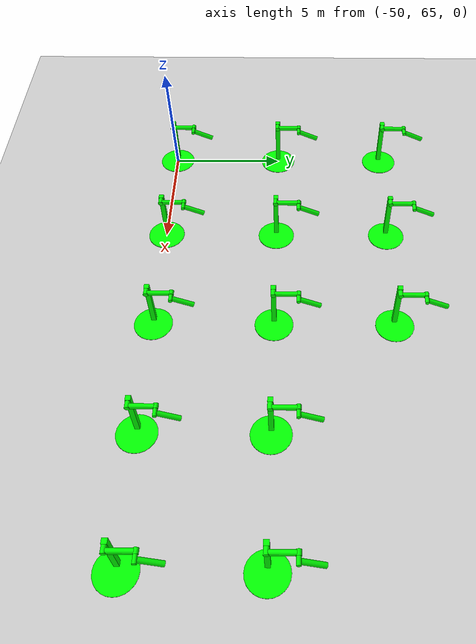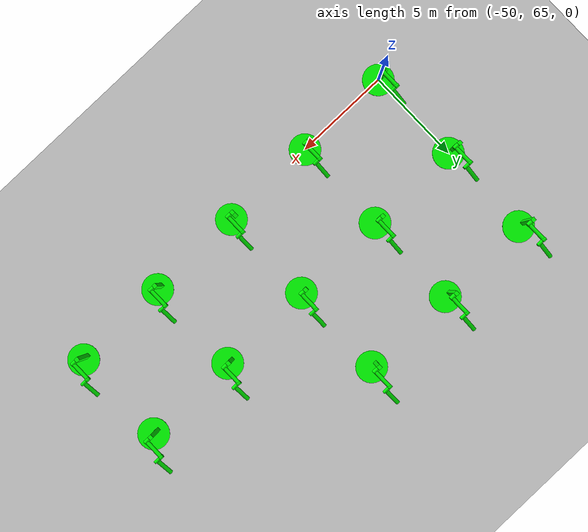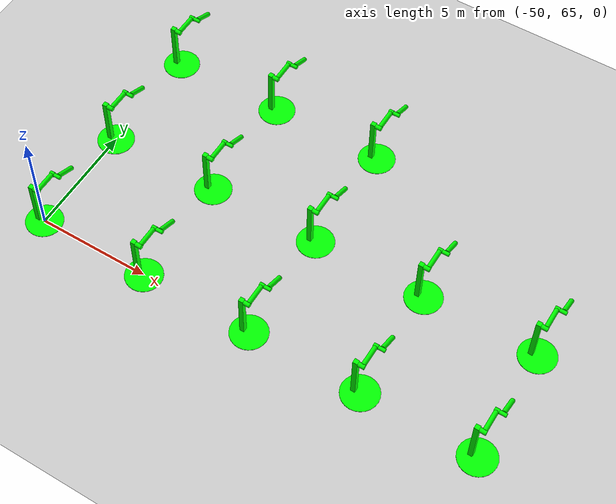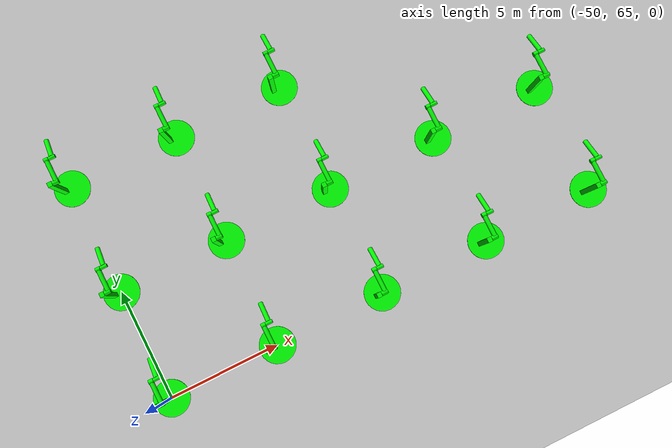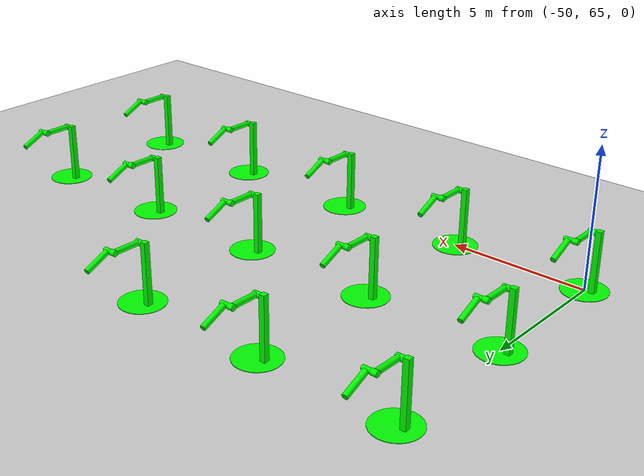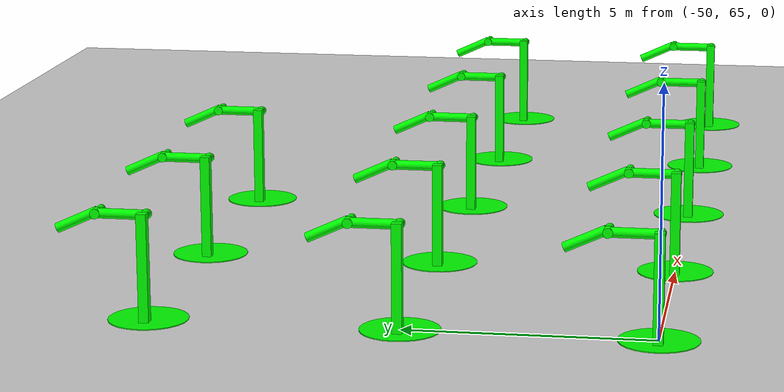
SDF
<sdf version="1.6">
 <world name="double_pendulums">
  <model name="ground_plane">
   <static>true</static>
   <link name="link">
    <collision name="collision">
     <geometry><plane><normal>0 0 1</normal><size>100 100</size></plane></geometry>
    </collision>
    <visual name="visual">
     <geometry><plane><normal>0 0 1</normal><size>100 100</size></plane></geometry>
     <material>
      <ambient>0.8 0.8 0.8 1</ambient>
      <diffuse>0.8 0.8 0.8 1</diffuse>
      <specular>0.8 0.8 0.8 1</specular>
     </material>
    </visual>
   </link>
  </model>
  <model name="dbl_pendulum_325">
   <pose>-50 65 0 0 0 0</pose>
   <link name="base">
    <inertial><mass>100</mass></inertial>
    <visual name="vis_plate_on_ground">
     <pose>0 0 0.01 0 0 0</pose>
     <geometry><cylinder><radius>0.8</radius><length>0.02</length></cylinder></geometry>
     <material><ambient>0 1 0 1</ambient><diffuse>0 1 0 1</diffuse><specular>0 1 0 1</specular></material>
    </visual>
    <visual name="vis_pole">
     <pose>-0.275 0 1.1 0 0 0</pose>
     <geometry><box><size>0.2 0.2 2.2</size></box></geometry>
     <material><ambient>0 1 0 1</ambient><diffuse>0 1 0 1</diffuse><specular>0 1 0 1</specular></material>
    </visual>
    <collision name="col_plate_on_ground">
     <pose>0 0 0.01 0 0 0</pose>
     <geometry><cylinder><radius>0.8</radius><length>0.02</length></cylinder></geometry>
    </collision>
    <collision name="col_pole">
     <pose>-0.275 0 1.1 0 0 0</pose>
     <geometry><box><size>0.2 0.2 2.2</size></box></geometry>
    </collision>
   </link>
   <link name="upper_link">
    <pose>0 0 2.1 -1.5708 0 0</pose>
    <inertial><pose>0 0 0.5 0 0 0</pose></inertial>
    <visual name="vis_upper_joint">
     <pose>-0.05 0 0 0 1.5708 0</pose>
     <geometry><cylinder><radius>0.1</radius><length>0.3</length></cylinder></geometry>
     <material><ambient>0 1 0 1</ambient><diffuse>0 1 0 1</diffuse><specular>0 1 0 1</specular></material>
    </visual>
    <visual name="vis_lower_joint">
     <pose>0 0 1.0 0 1.5708 0</pose>
     <geometry><cylinder><radius>0.1</radius><length>0.2</length></cylinder></geometry>
     <material><ambient>0 1 0 1</ambient><diffuse>0 1 0 1</diffuse><specular>0 1 0 1</specular></material>
    </visual>
    <visual name="vis_cylinder">
     <pose>0 0 0.5 0 0 0</pose>
     <geometry><cylinder><radius>0.1</radius><length>0.9</length></cylinder></geometry>
     <material><ambient>0 1 0 1</ambient><diffuse>0 1 0 1</diffuse><specular>0 1 0 1</specular></material>
    </visual>
    <collision name="col_upper_joint">
     <pose>-0.05 0 0 0 1.5708 0</pose>
     <geometry><cylinder><radius>0.1</radius><length>0.3</length></cylinder></geometry>
    </collision>
    <collision name="col_lower_joint">
     <pose>0 0 1.0 0 1.5708 0</pose>
     <geometry><cylinder><radius>0.1</radius><length>0.2</length></cylinder></geometry>
    </collision>
    <collision name="col_cylinder">
     <pose>0 0 0.5 0 0 0</pose>
     <geometry><cylinder><radius>0.1</radius><length>0.9</length></cylinder></geometry>
    </collision>
   </link>
   <link name="lower_link">
    <pose>0.25 1.0 2.1 -2 0 0</pose>
    <inertial><pose>0 0 0.5 0 0 0</pose></inertial>
    <visual name="vis_lower_joint">
     <pose>0 0 0 0 1.5708 0</pose>
     <geometry><cylinder><radius>0.08</radius><length>0.3</length></cylinder></geometry>
     <material><ambient>0 1 0 1</ambient><diffuse>0 1 0 1</diffuse><specular>0 1 0 1</specular></material>
    </visual>
    <visual name="vis_cylinder">
     <pose>0 0 0.5 0 0 0</pose>
     <geometry><cylinder><radius>0.1</radius><length>0.9</length></cylinder></geometry>
     <material><ambient>0 1 0 1</ambient><diffuse>0 1 0 1</diffuse><specular>0 1 0 1</specular></material>
    </visual>
    <collision name="col_lower_joint">
     <pose>0 0 0 0 1.5708 0</pose>
     <geometry><cylinder><radius>0.08</radius><length>0.3</length></cylinder></geometry>
    </collision>
    <collision name="col_cylinder">
     <pose>0 0 0.5 0 0 0</pose>
     <geometry><cylinder><radius>0.1</radius><length>0.9</length></cylinder></geometry>
    </collision>
   </link>
   <joint name="upper_joint" type="revolute">
    <parent>base</parent>
    <child>upper_link</child>
    <axis><xyz>1.0 0 0</xyz></axis>
   </joint>
   <joint name="lower_joint" type="revolute">
    <parent>upper_link</parent>
    <child>lower_link</child>
    <axis><xyz>1.0 0 0</xyz></axis>
   </joint>
  </model>
  <model name="dbl_pendulum_326">
   <pose>-45 65 0 0 0 0</pose>
   <link name="base">
    <inertial><mass>100</mass></inertial>
    <visual name="vis_plate_on_ground">
     <pose>0 0 0.01 0 0 0</pose>
     <geometry><cylinder><radius>0.8</radius><length>0.02</length></cylinder></geometry>
     <material><ambient>0 1 0 1</ambient><diffuse>0 1 0 1</diffuse><specular>0 1 0 1</specular></material>
    </visual>
    <visual name="vis_pole">
     <pose>-0.275 0 1.1 0 0 0</pose>
     <geometry><box><size>0.2 0.2 2.2</size></box></geometry>
     <material><ambient>0 1 0 1</ambient><diffuse>0 1 0 1</diffuse><specular>0 1 0 1</specular></material>
    </visual>
    <collision name="col_plate_on_ground">
     <pose>0 0 0.01 0 0 0</pose>
     <geometry><cylinder><radius>0.8</radius><length>0.02</length></cylinder></geometry>
    </collision>
    <collision name="col_pole">
     <pose>-0.275 0 1.1 0 0 0</pose>
     <geometry><box><size>0.2 0.2 2.2</size></box></geometry>
    </collision>
   </link>
   <link name="upper_link">
    <pose>0 0 2.1 -1.5708 0 0</pose>
    <inertial><pose>0 0 0.5 0 0 0</pose></inertial>
    <visual name="vis_upper_joint">
     <pose>-0.05 0 0 0 1.5708 0</pose>
     <geometry><cylinder><radius>0.1</radius><length>0.3</length></cylinder></geometry>
     <material><ambient>0 1 0 1</ambient><diffuse>0 1 0 1</diffuse><specular>0 1 0 1</specular></material>
    </visual>
    <visual name="vis_lower_joint">
     <pose>0 0 1.0 0 1.5708 0</pose>
     <geometry><cylinder><radius>0.1</radius><length>0.2</length></cylinder></geometry>
     <material><ambient>0 1 0 1</ambient><diffuse>0 1 0 1</diffuse><specular>0 1 0 1</specular></material>
    </visual>
    <visual name="vis_cylinder">
     <pose>0 0 0.5 0 0 0</pose>
     <geometry><cylinder><radius>0.1</radius><length>0.9</length></cylinder></geometry>
     <material><ambient>0 1 0 1</ambient><diffuse>0 1 0 1</diffuse><specular>0 1 0 1</specular></material>
    </visual>
    <collision name="col_upper_joint">
     <pose>-0.05 0 0 0 1.5708 0</pose>
     <geometry><cylinder><radius>0.1</radius><length>0.3</length></cylinder></geometry>
    </collision>
    <collision name="col_lower_joint">
     <pose>0 0 1.0 0 1.5708 0</pose>
     <geometry><cylinder><radius>0.1</radius><length>0.2</length></cylinder></geometry>
    </collision>
    <collision name="col_cylinder">
     <pose>0 0 0.5 0 0 0</pose>
     <geometry><cylinder><radius>0.1</radius><length>0.9</length></cylinder></geometry>
    </collision>
   </link>
   <link name="lower_link">
    <pose>0.25 1.0 2.1 -2 0 0</pose>
    <inertial><pose>0 0 0.5 0 0 0</pose></inertial>
    <visual name="vis_lower_joint">
     <pose>0 0 0 0 1.5708 0</pose>
     <geometry><cylinder><radius>0.08</radius><length>0.3</length></cylinder></geometry>
     <material><ambient>0 1 0 1</ambient><diffuse>0 1 0 1</diffuse><specular>0 1 0 1</specular></material>
    </visual>
    <visual name="vis_cylinder">
     <pose>0 0 0.5 0 0 0</pose>
     <geometry><cylinder><radius>0.1</radius><length>0.9</length></cylinder></geometry>
     <material><ambient>0 1 0 1</ambient><diffuse>0 1 0 1</diffuse><specular>0 1 0 1</specular></material>
    </visual>
    <collision name="col_lower_joint">
     <pose>0 0 0 0 1.5708 0</pose>
     <geometry><cylinder><radius>0.08</radius><length>0.3</length></cylinder></geometry>
    </collision>
    <collision name="col_cylinder">
     <pose>0 0 0.5 0 0 0</pose>
     <geometry><cylinder><radius>0.1</radius><length>0.9</length></cylinder></geometry>
    </collision>
   </link>
   <joint name="upper_joint" type="revolute">
    <parent>base</parent>
    <child>upper_link</child>
    <axis><xyz>1.0 0 0</xyz></axis>
   </joint>
   <joint name="lower_joint" type="revolute">
    <parent>upper_link</parent>
    <child>lower_link</child>
    <axis><xyz>1.0 0 0</xyz></axis>
   </joint>
  </model>
  <model name="dbl_pendulum_327">
   <pose>-40 65 0 0 0 0</pose>
   <link name="base">
    <inertial><mass>100</mass></inertial>
    <visual name="vis_plate_on_ground">
     <pose>0 0 0.01 0 0 0</pose>
     <geometry><cylinder><radius>0.8</radius><length>0.02</length></cylinder></geometry>
     <material><ambient>0 1 0 1</ambient><diffuse>0 1 0 1</diffuse><specular>0 1 0 1</specular></material>
    </visual>
    <visual name="vis_pole">
     <pose>-0.275 0 1.1 0 0 0</pose>
     <geometry><box><size>0.2 0.2 2.2</size></box></geometry>
     <material><ambient>0 1 0 1</ambient><diffuse>0 1 0 1</diffuse><specular>0 1 0 1</specular></material>
    </visual>
    <collision name="col_plate_on_ground">
     <pose>0 0 0.01 0 0 0</pose>
     <geometry><cylinder><radius>0.8</radius><length>0.02</length></cylinder></geometry>
    </collision>
    <collision name="col_pole">
     <pose>-0.275 0 1.1 0 0 0</pose>
     <geometry><box><size>0.2 0.2 2.2</size></box></geometry>
    </collision>
   </link>
   <link name="upper_link">
    <pose>0 0 2.1 -1.5708 0 0</pose>
    <inertial><pose>0 0 0.5 0 0 0</pose></inertial>
    <visual name="vis_upper_joint">
     <pose>-0.05 0 0 0 1.5708 0</pose>
     <geometry><cylinder><radius>0.1</radius><length>0.3</length></cylinder></geometry>
     <material><ambient>0 1 0 1</ambient><diffuse>0 1 0 1</diffuse><specular>0 1 0 1</specular></material>
    </visual>
    <visual name="vis_lower_joint">
     <pose>0 0 1.0 0 1.5708 0</pose>
     <geometry><cylinder><radius>0.1</radius><length>0.2</length></cylinder></geometry>
     <material><ambient>0 1 0 1</ambient><diffuse>0 1 0 1</diffuse><specular>0 1 0 1</specular></material>
    </visual>
    <visual name="vis_cylinder">
     <pose>0 0 0.5 0 0 0</pose>
     <geometry><cylinder><radius>0.1</radius><length>0.9</length></cylinder></geometry>
     <material><ambient>0 1 0 1</ambient><diffuse>0 1 0 1</diffuse><specular>0 1 0 1</specular></material>
    </visual>
    <collision name="col_upper_joint">
     <pose>-0.05 0 0 0 1.5708 0</pose>
     <geometry><cylinder><radius>0.1</radius><length>0.3</length></cylinder></geometry>
    </collision>
    <collision name="col_lower_joint">
     <pose>0 0 1.0 0 1.5708 0</pose>
     <geometry><cylinder><radius>0.1</radius><length>0.2</length></cylinder></geometry>
    </collision>
    <collision name="col_cylinder">
     <pose>0 0 0.5 0 0 0</pose>
     <geometry><cylinder><radius>0.1</radius><length>0.9</length></cylinder></geometry>
    </collision>
   </link>
   <link name="lower_link">
    <pose>0.25 1.0 2.1 -2 0 0</pose>
    <inertial><pose>0 0 0.5 0 0 0</pose></inertial>
    <visual name="vis_lower_joint">
     <pose>0 0 0 0 1.5708 0</pose>
     <geometry><cylinder><radius>0.08</radius><length>0.3</length></cylinder></geometry>
     <material><ambient>0 1 0 1</ambient><diffuse>0 1 0 1</diffuse><specular>0 1 0 1</specular></material>
    </visual>
    <visual name="vis_cylinder">
     <pose>0 0 0.5 0 0 0</pose>
     <geometry><cylinder><radius>0.1</radius><length>0.9</length></cylinder></geometry>
     <material><ambient>0 1 0 1</ambient><diffuse>0 1 0 1</diffuse><specular>0 1 0 1</specular></material>
    </visual>
    <collision name="col_lower_joint">
     <pose>0 0 0 0 1.5708 0</pose>
     <geometry><cylinder><radius>0.08</radius><length>0.3</length></cylinder></geometry>
    </collision>
    <collision name="col_cylinder">
     <pose>0 0 0.5 0 0 0</pose>
     <geometry><cylinder><radius>0.1</radius><length>0.9</length></cylinder></geometry>
    </collision>
   </link>
   <joint name="upper_joint" type="revolute">
    <parent>base</parent>
    <child>upper_link</child>
    <axis><xyz>1.0 0 0</xyz></axis>
   </joint>
   <joint name="lower_joint" type="revolute">
    <parent>upper_link</parent>
    <child>lower_link</child>
    <axis><xyz>1.0 0 0</xyz></axis>
   </joint>
  </model>
  <model name="dbl_pendulum_328">
   <pose>-35 65 0 0 0 0</pose>
   <link name="base">
    <inertial><mass>100</mass></inertial>
    <visual name="vis_plate_on_ground">
     <pose>0 0 0.01 0 0 0</pose>
     <geometry><cylinder><radius>0.8</radius><length>0.02</length></cylinder></geometry>
     <material><ambient>0 1 0 1</ambient><diffuse>0 1 0 1</diffuse><specular>0 1 0 1</specular></material>
    </visual>
    <visual name="vis_pole">
     <pose>-0.275 0 1.1 0 0 0</pose>
     <geometry><box><size>0.2 0.2 2.2</size></box></geometry>
     <material><ambient>0 1 0 1</ambient><diffuse>0 1 0 1</diffuse><specular>0 1 0 1</specular></material>
    </visual>
    <collision name="col_plate_on_ground">
     <pose>0 0 0.01 0 0 0</pose>
     <geometry><cylinder><radius>0.8</radius><length>0.02</length></cylinder></geometry>
    </collision>
    <collision name="col_pole">
     <pose>-0.275 0 1.1 0 0 0</pose>
     <geometry><box><size>0.2 0.2 2.2</size></box></geometry>
    </collision>
   </link>
   <link name="upper_link">
    <pose>0 0 2.1 -1.5708 0 0</pose>
    <inertial><pose>0 0 0.5 0 0 0</pose></inertial>
    <visual name="vis_upper_joint">
     <pose>-0.05 0 0 0 1.5708 0</pose>
     <geometry><cylinder><radius>0.1</radius><length>0.3</length></cylinder></geometry>
     <material><ambient>0 1 0 1</ambient><diffuse>0 1 0 1</diffuse><specular>0 1 0 1</specular></material>
    </visual>
    <visual name="vis_lower_joint">
     <pose>0 0 1.0 0 1.5708 0</pose>
     <geometry><cylinder><radius>0.1</radius><length>0.2</length></cylinder></geometry>
     <material><ambient>0 1 0 1</ambient><diffuse>0 1 0 1</diffuse><specular>0 1 0 1</specular></material>
    </visual>
    <visual name="vis_cylinder">
     <pose>0 0 0.5 0 0 0</pose>
     <geometry><cylinder><radius>0.1</radius><length>0.9</length></cylinder></geometry>
     <material><ambient>0 1 0 1</ambient><diffuse>0 1 0 1</diffuse><specular>0 1 0 1</specular></material>
    </visual>
    <collision name="col_upper_joint">
     <pose>-0.05 0 0 0 1.5708 0</pose>
     <geometry><cylinder><radius>0.1</radius><length>0.3</length></cylinder></geometry>
    </collision>
    <collision name="col_lower_joint">
     <pose>0 0 1.0 0 1.5708 0</pose>
     <geometry><cylinder><radius>0.1</radius><length>0.2</length></cylinder></geometry>
    </collision>
    <collision name="col_cylinder">
     <pose>0 0 0.5 0 0 0</pose>
     <geometry><cylinder><radius>0.1</radius><length>0.9</length></cylinder></geometry>
    </collision>
   </link>
   <link name="lower_link">
    <pose>0.25 1.0 2.1 -2 0 0</pose>
    <inertial><pose>0 0 0.5 0 0 0</pose></inertial>
    <visual name="vis_lower_joint">
     <pose>0 0 0 0 1.5708 0</pose>
     <geometry><cylinder><radius>0.08</radius><length>0.3</length></cylinder></geometry>
     <material><ambient>0 1 0 1</ambient><diffuse>0 1 0 1</diffuse><specular>0 1 0 1</specular></material>
    </visual>
    <visual name="vis_cylinder">
     <pose>0 0 0.5 0 0 0</pose>
     <geometry><cylinder><radius>0.1</radius><length>0.9</length></cylinder></geometry>
     <material><ambient>0 1 0 1</ambient><diffuse>0 1 0 1</diffuse><specular>0 1 0 1</specular></material>
    </visual>
    <collision name="col_lower_joint">
     <pose>0 0 0 0 1.5708 0</pose>
     <geometry><cylinder><radius>0.08</radius><length>0.3</length></cylinder></geometry>
    </collision>
    <collision name="col_cylinder">
     <pose>0 0 0.5 0 0 0</pose>
     <geometry><cylinder><radius>0.1</radius><length>0.9</length></cylinder></geometry>
    </collision>
   </link>
   <joint name="upper_joint" type="revolute">
    <parent>base</parent>
    <child>upper_link</child>
    <axis><xyz>1.0 0 0</xyz></axis>
   </joint>
   <joint name="lower_joint" type="revolute">
    <parent>upper_link</parent>
    <child>lower_link</child>
    <axis><xyz>1.0 0 0</xyz></axis>
   </joint>
  </model>
  <model name="dbl_pendulum_329">
   <pose>-30 65 0 0 0 0</pose>
   <link name="base">
    <inertial><mass>100</mass></inertial>
    <visual name="vis_plate_on_ground">
     <pose>0 0 0.01 0 0 0</pose>
     <geometry><cylinder><radius>0.8</radius><length>0.02</length></cylinder></geometry>
     <material><ambient>0 1 0 1</ambient><diffuse>0 1 0 1</diffuse><specular>0 1 0 1</specular></material>
    </visual>
    <visual name="vis_pole">
     <pose>-0.275 0 1.1 0 0 0</pose>
     <geometry><box><size>0.2 0.2 2.2</size></box></geometry>
     <material><ambient>0 1 0 1</ambient><diffuse>0 1 0 1</diffuse><specular>0 1 0 1</specular></material>
    </visual>
    <collision name="col_plate_on_ground">
     <pose>0 0 0.01 0 0 0</pose>
     <geometry><cylinder><radius>0.8</radius><length>0.02</length></cylinder></geometry>
    </collision>
    <collision name="col_pole">
     <pose>-0.275 0 1.1 0 0 0</pose>
     <geometry><box><size>0.2 0.2 2.2</size></box></geometry>
    </collision>
   </link>
   <link name="upper_link">
    <pose>0 0 2.1 -1.5708 0 0</pose>
    <inertial><pose>0 0 0.5 0 0 0</pose></inertial>
    <visual name="vis_upper_joint">
     <pose>-0.05 0 0 0 1.5708 0</pose>
     <geometry><cylinder><radius>0.1</radius><length>0.3</length></cylinder></geometry>
     <material><ambient>0 1 0 1</ambient><diffuse>0 1 0 1</diffuse><specular>0 1 0 1</specular></material>
    </visual>
    <visual name="vis_lower_joint">
     <pose>0 0 1.0 0 1.5708 0</pose>
     <geometry><cylinder><radius>0.1</radius><length>0.2</length></cylinder></geometry>
     <material><ambient>0 1 0 1</ambient><diffuse>0 1 0 1</diffuse><specular>0 1 0 1</specular></material>
    </visual>
    <visual name="vis_cylinder">
     <pose>0 0 0.5 0 0 0</pose>
     <geometry><cylinder><radius>0.1</radius><length>0.9</length></cylinder></geometry>
     <material><ambient>0 1 0 1</ambient><diffuse>0 1 0 1</diffuse><specular>0 1 0 1</specular></material>
    </visual>
    <collision name="col_upper_joint">
     <pose>-0.05 0 0 0 1.5708 0</pose>
     <geometry><cylinder><radius>0.1</radius><length>0.3</length></cylinder></geometry>
    </collision>
    <collision name="col_lower_joint">
     <pose>0 0 1.0 0 1.5708 0</pose>
     <geometry><cylinder><radius>0.1</radius><length>0.2</length></cylinder></geometry>
    </collision>
    <collision name="col_cylinder">
     <pose>0 0 0.5 0 0 0</pose>
     <geometry><cylinder><radius>0.1</radius><length>0.9</length></cylinder></geometry>
    </collision>
   </link>
   <link name="lower_link">
    <pose>0.25 1.0 2.1 -2 0 0</pose>
    <inertial><pose>0 0 0.5 0 0 0</pose></inertial>
    <visual name="vis_lower_joint">
     <pose>0 0 0 0 1.5708 0</pose>
     <geometry><cylinder><radius>0.08</radius><length>0.3</length></cylinder></geometry>
     <material><ambient>0 1 0 1</ambient><diffuse>0 1 0 1</diffuse><specular>0 1 0 1</specular></material>
    </visual>
    <visual name="vis_cylinder">
     <pose>0 0 0.5 0 0 0</pose>
     <geometry><cylinder><radius>0.1</radius><length>0.9</length></cylinder></geometry>
     <material><ambient>0 1 0 1</ambient><diffuse>0 1 0 1</diffuse><specular>0 1 0 1</specular></material>
    </visual>
    <collision name="col_lower_joint">
     <pose>0 0 0 0 1.5708 0</pose>
     <geometry><cylinder><radius>0.08</radius><length>0.3</length></cylinder></geometry>
    </collision>
    <collision name="col_cylinder">
     <pose>0 0 0.5 0 0 0</pose>
     <geometry><cylinder><radius>0.1</radius><length>0.9</length></cylinder></geometry>
    </collision>
   </link>
   <joint name="upper_joint" type="revolute">
    <parent>base</parent>
    <child>upper_link</child>
    <axis><xyz>1.0 0 0</xyz></axis>
   </joint>
   <joint name="lower_joint" type="revolute">
    <parent>upper_link</parent>
    <child>lower_link</child>
    <axis><xyz>1.0 0 0</xyz></axis>
   </joint>
  </model>
  <model name="dbl_pendulum_350">
   <pose>-50 70 0 0 0 0</pose>
   <link name="base">
    <inertial><mass>100</mass></inertial>
    <visual name="vis_plate_on_ground">
     <pose>0 0 0.01 0 0 0</pose>
     <geometry><cylinder><radius>0.8</radius><length>0.02</length></cylinder></geometry>
     <material><ambient>0 1 0 1</ambient><diffuse>0 1 0 1</diffuse><specular>0 1 0 1</specular></material>
    </visual>
    <visual name="vis_pole">
     <pose>-0.275 0 1.1 0 0 0</pose>
     <geometry><box><size>0.2 0.2 2.2</size></box></geometry>
     <material><ambient>0 1 0 1</ambient><diffuse>0 1 0 1</diffuse><specular>0 1 0 1</specular></material>
    </visual>
    <collision name="col_plate_on_ground">
     <pose>0 0 0.01 0 0 0</pose>
     <geometry><cylinder><radius>0.8</radius><length>0.02</length></cylinder></geometry>
    </collision>
    <collision name="col_pole">
     <pose>-0.275 0 1.1 0 0 0</pose>
     <geometry><box><size>0.2 0.2 2.2</size></box></geometry>
    </collision>
   </link>
   <link name="upper_link">
    <pose>0 0 2.1 -1.5708 0 0</pose>
    <inertial><pose>0 0 0.5 0 0 0</pose></inertial>
    <visual name="vis_upper_joint">
     <pose>-0.05 0 0 0 1.5708 0</pose>
     <geometry><cylinder><radius>0.1</radius><length>0.3</length></cylinder></geometry>
     <material><ambient>0 1 0 1</ambient><diffuse>0 1 0 1</diffuse><specular>0 1 0 1</specular></material>
    </visual>
    <visual name="vis_lower_joint">
     <pose>0 0 1.0 0 1.5708 0</pose>
     <geometry><cylinder><radius>0.1</radius><length>0.2</length></cylinder></geometry>
     <material><ambient>0 1 0 1</ambient><diffuse>0 1 0 1</diffuse><specular>0 1 0 1</specular></material>
    </visual>
    <visual name="vis_cylinder">
     <pose>0 0 0.5 0 0 0</pose>
     <geometry><cylinder><radius>0.1</radius><length>0.9</length></cylinder></geometry>
     <material><ambient>0 1 0 1</ambient><diffuse>0 1 0 1</diffuse><specular>0 1 0 1</specular></material>
    </visual>
    <collision name="col_upper_joint">
     <pose>-0.05 0 0 0 1.5708 0</pose>
     <geometry><cylinder><radius>0.1</radius><length>0.3</length></cylinder></geometry>
    </collision>
    <collision name="col_lower_joint">
     <pose>0 0 1.0 0 1.5708 0</pose>
     <geometry><cylinder><radius>0.1</radius><length>0.2</length></cylinder></geometry>
    </collision>
    <collision name="col_cylinder">
     <pose>0 0 0.5 0 0 0</pose>
     <geometry><cylinder><radius>0.1</radius><length>0.9</length></cylinder></geometry>
    </collision>
   </link>
   <link name="lower_link">
    <pose>0.25 1.0 2.1 -2 0 0</pose>
    <inertial><pose>0 0 0.5 0 0 0</pose></inertial>
    <visual name="vis_lower_joint">
     <pose>0 0 0 0 1.5708 0</pose>
     <geometry><cylinder><radius>0.08</radius><length>0.3</length></cylinder></geometry>
     <material><ambient>0 1 0 1</ambient><diffuse>0 1 0 1</diffuse><specular>0 1 0 1</specular></material>
    </visual>
    <visual name="vis_cylinder">
     <pose>0 0 0.5 0 0 0</pose>
     <geometry><cylinder><radius>0.1</radius><length>0.9</length></cylinder></geometry>
     <material><ambient>0 1 0 1</ambient><diffuse>0 1 0 1</diffuse><specular>0 1 0 1</specular></material>
    </visual>
    <collision name="col_lower_joint">
     <pose>0 0 0 0 1.5708 0</pose>
     <geometry><cylinder><radius>0.08</radius><length>0.3</length></cylinder></geometry>
    </collision>
    <collision name="col_cylinder">
     <pose>0 0 0.5 0 0 0</pose>
     <geometry><cylinder><radius>0.1</radius><length>0.9</length></cylinder></geometry>
    </collision>
   </link>
   <joint name="upper_joint" type="revolute">
    <parent>base</parent>
    <child>upper_link</child>
    <axis><xyz>1.0 0 0</xyz></axis>
   </joint>
   <joint name="lower_joint" type="revolute">
    <parent>upper_link</parent>
    <child>lower_link</child>
    <axis><xyz>1.0 0 0</xyz></axis>
   </joint>
  </model>
  <model name="dbl_pendulum_351">
   <pose>-45 70 0 0 0 0</pose>
   <link name="base">
    <inertial><mass>100</mass></inertial>
    <visual name="vis_plate_on_ground">
     <pose>0 0 0.01 0 0 0</pose>
     <geometry><cylinder><radius>0.8</radius><length>0.02</length></cylinder></geometry>
     <material><ambient>0 1 0 1</ambient><diffuse>0 1 0 1</diffuse><specular>0 1 0 1</specular></material>
    </visual>
    <visual name="vis_pole">
     <pose>-0.275 0 1.1 0 0 0</pose>
     <geometry><box><size>0.2 0.2 2.2</size></box></geometry>
     <material><ambient>0 1 0 1</ambient><diffuse>0 1 0 1</diffuse><specular>0 1 0 1</specular></material>
    </visual>
    <collision name="col_plate_on_ground">
     <pose>0 0 0.01 0 0 0</pose>
     <geometry><cylinder><radius>0.8</radius><length>0.02</length></cylinder></geometry>
    </collision>
    <collision name="col_pole">
     <pose>-0.275 0 1.1 0 0 0</pose>
     <geometry><box><size>0.2 0.2 2.2</size></box></geometry>
    </collision>
   </link>
   <link name="upper_link">
    <pose>0 0 2.1 -1.5708 0 0</pose>
    <inertial><pose>0 0 0.5 0 0 0</pose></inertial>
    <visual name="vis_upper_joint">
     <pose>-0.05 0 0 0 1.5708 0</pose>
     <geometry><cylinder><radius>0.1</radius><length>0.3</length></cylinder></geometry>
     <material><ambient>0 1 0 1</ambient><diffuse>0 1 0 1</diffuse><specular>0 1 0 1</specular></material>
    </visual>
    <visual name="vis_lower_joint">
     <pose>0 0 1.0 0 1.5708 0</pose>
     <geometry><cylinder><radius>0.1</radius><length>0.2</length></cylinder></geometry>
     <material><ambient>0 1 0 1</ambient><diffuse>0 1 0 1</diffuse><specular>0 1 0 1</specular></material>
    </visual>
    <visual name="vis_cylinder">
     <pose>0 0 0.5 0 0 0</pose>
     <geometry><cylinder><radius>0.1</radius><length>0.9</length></cylinder></geometry>
     <material><ambient>0 1 0 1</ambient><diffuse>0 1 0 1</diffuse><specular>0 1 0 1</specular></material>
    </visual>
    <collision name="col_upper_joint">
     <pose>-0.05 0 0 0 1.5708 0</pose>
     <geometry><cylinder><radius>0.1</radius><length>0.3</length></cylinder></geometry>
    </collision>
    <collision name="col_lower_joint">
     <pose>0 0 1.0 0 1.5708 0</pose>
     <geometry><cylinder><radius>0.1</radius><length>0.2</length></cylinder></geometry>
    </collision>
    <collision name="col_cylinder">
     <pose>0 0 0.5 0 0 0</pose>
     <geometry><cylinder><radius>0.1</radius><length>0.9</length></cylinder></geometry>
    </collision>
   </link>
   <link name="lower_link">
    <pose>0.25 1.0 2.1 -2 0 0</pose>
    <inertial><pose>0 0 0.5 0 0 0</pose></inertial>
    <visual name="vis_lower_joint">
     <pose>0 0 0 0 1.5708 0</pose>
     <geometry><cylinder><radius>0.08</radius><length>0.3</length></cylinder></geometry>
     <material><ambient>0 1 0 1</ambient><diffuse>0 1 0 1</diffuse><specular>0 1 0 1</specular></material>
    </visual>
    <visual name="vis_cylinder">
     <pose>0 0 0.5 0 0 0</pose>
     <geometry><cylinder><radius>0.1</radius><length>0.9</length></cylinder></geometry>
     <material><ambient>0 1 0 1</ambient><diffuse>0 1 0 1</diffuse><specular>0 1 0 1</specular></material>
    </visual>
    <collision name="col_lower_joint">
     <pose>0 0 0 0 1.5708 0</pose>
     <geometry><cylinder><radius>0.08</radius><length>0.3</length></cylinder></geometry>
    </collision>
    <collision name="col_cylinder">
     <pose>0 0 0.5 0 0 0</pose>
     <geometry><cylinder><radius>0.1</radius><length>0.9</length></cylinder></geometry>
    </collision>
   </link>
   <joint name="upper_joint" type="revolute">
    <parent>base</parent>
    <child>upper_link</child>
    <axis><xyz>1.0 0 0</xyz></axis>
   </joint>
   <joint name="lower_joint" type="revolute">
    <parent>upper_link</parent>
    <child>lower_link</child>
    <axis><xyz>1.0 0 0</xyz></axis>
   </joint>
  </model>
  <model name="dbl_pendulum_352">
   <pose>-40 70 0 0 0 0</pose>
   <link name="base">
    <inertial><mass>100</mass></inertial>
    <visual name="vis_plate_on_ground">
     <pose>0 0 0.01 0 0 0</pose>
     <geometry><cylinder><radius>0.8</radius><length>0.02</length></cylinder></geometry>
     <material><ambient>0 1 0 1</ambient><diffuse>0 1 0 1</diffuse><specular>0 1 0 1</specular></material>
    </visual>
    <visual name="vis_pole">
     <pose>-0.275 0 1.1 0 0 0</pose>
     <geometry><box><size>0.2 0.2 2.2</size></box></geometry>
     <material><ambient>0 1 0 1</ambient><diffuse>0 1 0 1</diffuse><specular>0 1 0 1</specular></material>
    </visual>
    <collision name="col_plate_on_ground">
     <pose>0 0 0.01 0 0 0</pose>
     <geometry><cylinder><radius>0.8</radius><length>0.02</length></cylinder></geometry>
    </collision>
    <collision name="col_pole">
     <pose>-0.275 0 1.1 0 0 0</pose>
     <geometry><box><size>0.2 0.2 2.2</size></box></geometry>
    </collision>
   </link>
   <link name="upper_link">
    <pose>0 0 2.1 -1.5708 0 0</pose>
    <inertial><pose>0 0 0.5 0 0 0</pose></inertial>
    <visual name="vis_upper_joint">
     <pose>-0.05 0 0 0 1.5708 0</pose>
     <geometry><cylinder><radius>0.1</radius><length>0.3</length></cylinder></geometry>
     <material><ambient>0 1 0 1</ambient><diffuse>0 1 0 1</diffuse><specular>0 1 0 1</specular></material>
    </visual>
    <visual name="vis_lower_joint">
     <pose>0 0 1.0 0 1.5708 0</pose>
     <geometry><cylinder><radius>0.1</radius><length>0.2</length></cylinder></geometry>
     <material><ambient>0 1 0 1</ambient><diffuse>0 1 0 1</diffuse><specular>0 1 0 1</specular></material>
    </visual>
    <visual name="vis_cylinder">
     <pose>0 0 0.5 0 0 0</pose>
     <geometry><cylinder><radius>0.1</radius><length>0.9</length></cylinder></geometry>
     <material><ambient>0 1 0 1</ambient><diffuse>0 1 0 1</diffuse><specular>0 1 0 1</specular></material>
    </visual>
    <collision name="col_upper_joint">
     <pose>-0.05 0 0 0 1.5708 0</pose>
     <geometry><cylinder><radius>0.1</radius><length>0.3</length></cylinder></geometry>
    </collision>
    <collision name="col_lower_joint">
     <pose>0 0 1.0 0 1.5708 0</pose>
     <geometry><cylinder><radius>0.1</radius><length>0.2</length></cylinder></geometry>
    </collision>
    <collision name="col_cylinder">
     <pose>0 0 0.5 0 0 0</pose>
     <geometry><cylinder><radius>0.1</radius><length>0.9</length></cylinder></geometry>
    </collision>
   </link>
   <link name="lower_link">
    <pose>0.25 1.0 2.1 -2 0 0</pose>
    <inertial><pose>0 0 0.5 0 0 0</pose></inertial>
    <visual name="vis_lower_joint">
     <pose>0 0 0 0 1.5708 0</pose>
     <geometry><cylinder><radius>0.08</radius><length>0.3</length></cylinder></geometry>
     <material><ambient>0 1 0 1</ambient><diffuse>0 1 0 1</diffuse><specular>0 1 0 1</specular></material>
    </visual>
    <visual name="vis_cylinder">
     <pose>0 0 0.5 0 0 0</pose>
     <geometry><cylinder><radius>0.1</radius><length>0.9</length></cylinder></geometry>
     <material><ambient>0 1 0 1</ambient><diffuse>0 1 0 1</diffuse><specular>0 1 0 1</specular></material>
    </visual>
    <collision name="col_lower_joint">
     <pose>0 0 0 0 1.5708 0</pose>
     <geometry><cylinder><radius>0.08</radius><length>0.3</length></cylinder></geometry>
    </collision>
    <collision name="col_cylinder">
     <pose>0 0 0.5 0 0 0</pose>
     <geometry><cylinder><radius>0.1</radius><length>0.9</length></cylinder></geometry>
    </collision>
   </link>
   <joint name="upper_joint" type="revolute">
    <parent>base</parent>
    <child>upper_link</child>
    <axis><xyz>1.0 0 0</xyz></axis>
   </joint>
   <joint name="lower_joint" type="revolute">
    <parent>upper_link</parent>
    <child>lower_link</child>
    <axis><xyz>1.0 0 0</xyz></axis>
   </joint>
  </model>
  <model name="dbl_pendulum_353">
   <pose>-35 70 0 0 0 0</pose>
   <link name="base">
    <inertial><mass>100</mass></inertial>
    <visual name="vis_plate_on_ground">
     <pose>0 0 0.01 0 0 0</pose>
     <geometry><cylinder><radius>0.8</radius><length>0.02</length></cylinder></geometry>
     <material><ambient>0 1 0 1</ambient><diffuse>0 1 0 1</diffuse><specular>0 1 0 1</specular></material>
    </visual>
    <visual name="vis_pole">
     <pose>-0.275 0 1.1 0 0 0</pose>
     <geometry><box><size>0.2 0.2 2.2</size></box></geometry>
     <material><ambient>0 1 0 1</ambient><diffuse>0 1 0 1</diffuse><specular>0 1 0 1</specular></material>
    </visual>
    <collision name="col_plate_on_ground">
     <pose>0 0 0.01 0 0 0</pose>
     <geometry><cylinder><radius>0.8</radius><length>0.02</length></cylinder></geometry>
    </collision>
    <collision name="col_pole">
     <pose>-0.275 0 1.1 0 0 0</pose>
     <geometry><box><size>0.2 0.2 2.2</size></box></geometry>
    </collision>
   </link>
   <link name="upper_link">
    <pose>0 0 2.1 -1.5708 0 0</pose>
    <inertial><pose>0 0 0.5 0 0 0</pose></inertial>
    <visual name="vis_upper_joint">
     <pose>-0.05 0 0 0 1.5708 0</pose>
     <geometry><cylinder><radius>0.1</radius><length>0.3</length></cylinder></geometry>
     <material><ambient>0 1 0 1</ambient><diffuse>0 1 0 1</diffuse><specular>0 1 0 1</specular></material>
    </visual>
    <visual name="vis_lower_joint">
     <pose>0 0 1.0 0 1.5708 0</pose>
     <geometry><cylinder><radius>0.1</radius><length>0.2</length></cylinder></geometry>
     <material><ambient>0 1 0 1</ambient><diffuse>0 1 0 1</diffuse><specular>0 1 0 1</specular></material>
    </visual>
    <visual name="vis_cylinder">
     <pose>0 0 0.5 0 0 0</pose>
     <geometry><cylinder><radius>0.1</radius><length>0.9</length></cylinder></geometry>
     <material><ambient>0 1 0 1</ambient><diffuse>0 1 0 1</diffuse><specular>0 1 0 1</specular></material>
    </visual>
    <collision name="col_upper_joint">
     <pose>-0.05 0 0 0 1.5708 0</pose>
     <geometry><cylinder><radius>0.1</radius><length>0.3</length></cylinder></geometry>
    </collision>
    <collision name="col_lower_joint">
     <pose>0 0 1.0 0 1.5708 0</pose>
     <geometry><cylinder><radius>0.1</radius><length>0.2</length></cylinder></geometry>
    </collision>
    <collision name="col_cylinder">
     <pose>0 0 0.5 0 0 0</pose>
     <geometry><cylinder><radius>0.1</radius><length>0.9</length></cylinder></geometry>
    </collision>
   </link>
   <link name="lower_link">
    <pose>0.25 1.0 2.1 -2 0 0</pose>
    <inertial><pose>0 0 0.5 0 0 0</pose></inertial>
    <visual name="vis_lower_joint">
     <pose>0 0 0 0 1.5708 0</pose>
     <geometry><cylinder><radius>0.08</radius><length>0.3</length></cylinder></geometry>
     <material><ambient>0 1 0 1</ambient><diffuse>0 1 0 1</diffuse><specular>0 1 0 1</specular></material>
    </visual>
    <visual name="vis_cylinder">
     <pose>0 0 0.5 0 0 0</pose>
     <geometry><cylinder><radius>0.1</radius><length>0.9</length></cylinder></geometry>
     <material><ambient>0 1 0 1</ambient><diffuse>0 1 0 1</diffuse><specular>0 1 0 1</specular></material>
    </visual>
    <collision name="col_lower_joint">
     <pose>0 0 0 0 1.5708 0</pose>
     <geometry><cylinder><radius>0.08</radius><length>0.3</length></cylinder></geometry>
    </collision>
    <collision name="col_cylinder">
     <pose>0 0 0.5 0 0 0</pose>
     <geometry><cylinder><radius>0.1</radius><length>0.9</length></cylinder></geometry>
    </collision>
   </link>
   <joint name="upper_joint" type="revolute">
    <parent>base</parent>
    <child>upper_link</child>
    <axis><xyz>1.0 0 0</xyz></axis>
   </joint>
   <joint name="lower_joint" type="revolute">
    <parent>upper_link</parent>
    <child>lower_link</child>
    <axis><xyz>1.0 0 0</xyz></axis>
   </joint>
  </model>
  <model name="dbl_pendulum_354">
   <pose>-30 70 0 0 0 0</pose>
   <link name="base">
    <inertial><mass>100</mass></inertial>
    <visual name="vis_plate_on_ground">
     <pose>0 0 0.01 0 0 0</pose>
     <geometry><cylinder><radius>0.8</radius><length>0.02</length></cylinder></geometry>
     <material><ambient>0 1 0 1</ambient><diffuse>0 1 0 1</diffuse><specular>0 1 0 1</specular></material>
    </visual>
    <visual name="vis_pole">
     <pose>-0.275 0 1.1 0 0 0</pose>
     <geometry><box><size>0.2 0.2 2.2</size></box></geometry>
     <material><ambient>0 1 0 1</ambient><diffuse>0 1 0 1</diffuse><specular>0 1 0 1</specular></material>
    </visual>
    <collision name="col_plate_on_ground">
     <pose>0 0 0.01 0 0 0</pose>
     <geometry><cylinder><radius>0.8</radius><length>0.02</length></cylinder></geometry>
    </collision>
    <collision name="col_pole">
     <pose>-0.275 0 1.1 0 0 0</pose>
     <geometry><box><size>0.2 0.2 2.2</size></box></geometry>
    </collision>
   </link>
   <link name="upper_link">
    <pose>0 0 2.1 -1.5708 0 0</pose>
    <inertial><pose>0 0 0.5 0 0 0</pose></inertial>
    <visual name="vis_upper_joint">
     <pose>-0.05 0 0 0 1.5708 0</pose>
     <geometry><cylinder><radius>0.1</radius><length>0.3</length></cylinder></geometry>
     <material><ambient>0 1 0 1</ambient><diffuse>0 1 0 1</diffuse><specular>0 1 0 1</specular></material>
    </visual>
    <visual name="vis_lower_joint">
     <pose>0 0 1.0 0 1.5708 0</pose>
     <geometry><cylinder><radius>0.1</radius><length>0.2</length></cylinder></geometry>
     <material><ambient>0 1 0 1</ambient><diffuse>0 1 0 1</diffuse><specular>0 1 0 1</specular></material>
    </visual>
    <visual name="vis_cylinder">
     <pose>0 0 0.5 0 0 0</pose>
     <geometry><cylinder><radius>0.1</radius><length>0.9</length></cylinder></geometry>
     <material><ambient>0 1 0 1</ambient><diffuse>0 1 0 1</diffuse><specular>0 1 0 1</specular></material>
    </visual>
    <collision name="col_upper_joint">
     <pose>-0.05 0 0 0 1.5708 0</pose>
     <geometry><cylinder><radius>0.1</radius><length>0.3</length></cylinder></geometry>
    </collision>
    <collision name="col_lower_joint">
     <pose>0 0 1.0 0 1.5708 0</pose>
     <geometry><cylinder><radius>0.1</radius><length>0.2</length></cylinder></geometry>
    </collision>
    <collision name="col_cylinder">
     <pose>0 0 0.5 0 0 0</pose>
     <geometry><cylinder><radius>0.1</radius><length>0.9</length></cylinder></geometry>
    </collision>
   </link>
   <link name="lower_link">
    <pose>0.25 1.0 2.1 -2 0 0</pose>
    <inertial><pose>0 0 0.5 0 0 0</pose></inertial>
    <visual name="vis_lower_joint">
     <pose>0 0 0 0 1.5708 0</pose>
     <geometry><cylinder><radius>0.08</radius><length>0.3</length></cylinder></geometry>
     <material><ambient>0 1 0 1</ambient><diffuse>0 1 0 1</diffuse><specular>0 1 0 1</specular></material>
    </visual>
    <visual name="vis_cylinder">
     <pose>0 0 0.5 0 0 0</pose>
     <geometry><cylinder><radius>0.1</radius><length>0.9</length></cylinder></geometry>
     <material><ambient>0 1 0 1</ambient><diffuse>0 1 0 1</diffuse><specular>0 1 0 1</specular></material>
    </visual>
    <collision name="col_lower_joint">
     <pose>0 0 0 0 1.5708 0</pose>
     <geometry><cylinder><radius>0.08</radius><length>0.3</length></cylinder></geometry>
    </collision>
    <collision name="col_cylinder">
     <pose>0 0 0.5 0 0 0</pose>
     <geometry><cylinder><radius>0.1</radius><length>0.9</length></cylinder></geometry>
    </collision>
   </link>
   <joint name="upper_joint" type="revolute">
    <parent>base</parent>
    <child>upper_link</child>
    <axis><xyz>1.0 0 0</xyz></axis>
   </joint>
   <joint name="lower_joint" type="revolute">
    <parent>upper_link</parent>
    <child>lower_link</child>
    <axis><xyz>1.0 0 0</xyz></axis>
   </joint>
  </model>
  <model name="dbl_pendulum_375">
   <pose>-50 75 0 0 0 0</pose>
   <link name="base">
    <inertial><mass>100</mass></inertial>
    <visual name="vis_plate_on_ground">
     <pose>0 0 0.01 0 0 0</pose>
     <geometry><cylinder><radius>0.8</radius><length>0.02</length></cylinder></geometry>
     <material><ambient>0 1 0 1</ambient><diffuse>0 1 0 1</diffuse><specular>0 1 0 1</specular></material>
    </visual>
    <visual name="vis_pole">
     <pose>-0.275 0 1.1 0 0 0</pose>
     <geometry><box><size>0.2 0.2 2.2</size></box></geometry>
     <material><ambient>0 1 0 1</ambient><diffuse>0 1 0 1</diffuse><specular>0 1 0 1</specular></material>
    </visual>
    <collision name="col_plate_on_ground">
     <pose>0 0 0.01 0 0 0</pose>
     <geometry><cylinder><radius>0.8</radius><length>0.02</length></cylinder></geometry>
    </collision>
    <collision name="col_pole">
     <pose>-0.275 0 1.1 0 0 0</pose>
     <geometry><box><size>0.2 0.2 2.2</size></box></geometry>
    </collision>
   </link>
   <link name="upper_link">
    <pose>0 0 2.1 -1.5708 0 0</pose>
    <inertial><pose>0 0 0.5 0 0 0</pose></inertial>
    <visual name="vis_upper_joint">
     <pose>-0.05 0 0 0 1.5708 0</pose>
     <geometry><cylinder><radius>0.1</radius><length>0.3</length></cylinder></geometry>
     <material><ambient>0 1 0 1</ambient><diffuse>0 1 0 1</diffuse><specular>0 1 0 1</specular></material>
    </visual>
    <visual name="vis_lower_joint">
     <pose>0 0 1.0 0 1.5708 0</pose>
     <geometry><cylinder><radius>0.1</radius><length>0.2</length></cylinder></geometry>
     <material><ambient>0 1 0 1</ambient><diffuse>0 1 0 1</diffuse><specular>0 1 0 1</specular></material>
    </visual>
    <visual name="vis_cylinder">
     <pose>0 0 0.5 0 0 0</pose>
     <geometry><cylinder><radius>0.1</radius><length>0.9</length></cylinder></geometry>
     <material><ambient>0 1 0 1</ambient><diffuse>0 1 0 1</diffuse><specular>0 1 0 1</specular></material>
    </visual>
    <collision name="col_upper_joint">
     <pose>-0.05 0 0 0 1.5708 0</pose>
     <geometry><cylinder><radius>0.1</radius><length>0.3</length></cylinder></geometry>
    </collision>
    <collision name="col_lower_joint">
     <pose>0 0 1.0 0 1.5708 0</pose>
     <geometry><cylinder><radius>0.1</radius><length>0.2</length></cylinder></geometry>
    </collision>
    <collision name="col_cylinder">
     <pose>0 0 0.5 0 0 0</pose>
     <geometry><cylinder><radius>0.1</radius><length>0.9</length></cylinder></geometry>
    </collision>
   </link>
   <link name="lower_link">
    <pose>0.25 1.0 2.1 -2 0 0</pose>
    <inertial><pose>0 0 0.5 0 0 0</pose></inertial>
    <visual name="vis_lower_joint">
     <pose>0 0 0 0 1.5708 0</pose>
     <geometry><cylinder><radius>0.08</radius><length>0.3</length></cylinder></geometry>
     <material><ambient>0 1 0 1</ambient><diffuse>0 1 0 1</diffuse><specular>0 1 0 1</specular></material>
    </visual>
    <visual name="vis_cylinder">
     <pose>0 0 0.5 0 0 0</pose>
     <geometry><cylinder><radius>0.1</radius><length>0.9</length></cylinder></geometry>
     <material><ambient>0 1 0 1</ambient><diffuse>0 1 0 1</diffuse><specular>0 1 0 1</specular></material>
    </visual>
    <collision name="col_lower_joint">
     <pose>0 0 0 0 1.5708 0</pose>
     <geometry><cylinder><radius>0.08</radius><length>0.3</length></cylinder></geometry>
    </collision>
    <collision name="col_cylinder">
     <pose>0 0 0.5 0 0 0</pose>
     <geometry><cylinder><radius>0.1</radius><length>0.9</length></cylinder></geometry>
    </collision>
   </link>
   <joint name="upper_joint" type="revolute">
    <parent>base</parent>
    <child>upper_link</child>
    <axis><xyz>1.0 0 0</xyz></axis>
   </joint>
   <joint name="lower_joint" type="revolute">
    <parent>upper_link</parent>
    <child>lower_link</child>
    <axis><xyz>1.0 0 0</xyz></axis>
   </joint>
  </model>
  <model name="dbl_pendulum_376">
   <pose>-45 75 0 0 0 0</pose>
   <link name="base">
    <inertial><mass>100</mass></inertial>
    <visual name="vis_plate_on_ground">
     <pose>0 0 0.01 0 0 0</pose>
     <geometry><cylinder><radius>0.8</radius><length>0.02</length></cylinder></geometry>
     <material><ambient>0 1 0 1</ambient><diffuse>0 1 0 1</diffuse><specular>0 1 0 1</specular></material>
    </visual>
    <visual name="vis_pole">
     <pose>-0.275 0 1.1 0 0 0</pose>
     <geometry><box><size>0.2 0.2 2.2</size></box></geometry>
     <material><ambient>0 1 0 1</ambient><diffuse>0 1 0 1</diffuse><specular>0 1 0 1</specular></material>
    </visual>
    <collision name="col_plate_on_ground">
     <pose>0 0 0.01 0 0 0</pose>
     <geometry><cylinder><radius>0.8</radius><length>0.02</length></cylinder></geometry>
    </collision>
    <collision name="col_pole">
     <pose>-0.275 0 1.1 0 0 0</pose>
     <geometry><box><size>0.2 0.2 2.2</size></box></geometry>
    </collision>
   </link>
   <link name="upper_link">
    <pose>0 0 2.1 -1.5708 0 0</pose>
    <inertial><pose>0 0 0.5 0 0 0</pose></inertial>
    <visual name="vis_upper_joint">
     <pose>-0.05 0 0 0 1.5708 0</pose>
     <geometry><cylinder><radius>0.1</radius><length>0.3</length></cylinder></geometry>
     <material><ambient>0 1 0 1</ambient><diffuse>0 1 0 1</diffuse><specular>0 1 0 1</specular></material>
    </visual>
    <visual name="vis_lower_joint">
     <pose>0 0 1.0 0 1.5708 0</pose>
     <geometry><cylinder><radius>0.1</radius><length>0.2</length></cylinder></geometry>
     <material><ambient>0 1 0 1</ambient><diffuse>0 1 0 1</diffuse><specular>0 1 0 1</specular></material>
    </visual>
    <visual name="vis_cylinder">
     <pose>0 0 0.5 0 0 0</pose>
     <geometry><cylinder><radius>0.1</radius><length>0.9</length></cylinder></geometry>
     <material><ambient>0 1 0 1</ambient><diffuse>0 1 0 1</diffuse><specular>0 1 0 1</specular></material>
    </visual>
    <collision name="col_upper_joint">
     <pose>-0.05 0 0 0 1.5708 0</pose>
     <geometry><cylinder><radius>0.1</radius><length>0.3</length></cylinder></geometry>
    </collision>
    <collision name="col_lower_joint">
     <pose>0 0 1.0 0 1.5708 0</pose>
     <geometry><cylinder><radius>0.1</radius><length>0.2</length></cylinder></geometry>
    </collision>
    <collision name="col_cylinder">
     <pose>0 0 0.5 0 0 0</pose>
     <geometry><cylinder><radius>0.1</radius><length>0.9</length></cylinder></geometry>
    </collision>
   </link>
   <link name="lower_link">
    <pose>0.25 1.0 2.1 -2 0 0</pose>
    <inertial><pose>0 0 0.5 0 0 0</pose></inertial>
    <visual name="vis_lower_joint">
     <pose>0 0 0 0 1.5708 0</pose>
     <geometry><cylinder><radius>0.08</radius><length>0.3</length></cylinder></geometry>
     <material><ambient>0 1 0 1</ambient><diffuse>0 1 0 1</diffuse><specular>0 1 0 1</specular></material>
    </visual>
    <visual name="vis_cylinder">
     <pose>0 0 0.5 0 0 0</pose>
     <geometry><cylinder><radius>0.1</radius><length>0.9</length></cylinder></geometry>
     <material><ambient>0 1 0 1</ambient><diffuse>0 1 0 1</diffuse><specular>0 1 0 1</specular></material>
    </visual>
    <collision name="col_lower_joint">
     <pose>0 0 0 0 1.5708 0</pose>
     <geometry><cylinder><radius>0.08</radius><length>0.3</length></cylinder></geometry>
    </collision>
    <collision name="col_cylinder">
     <pose>0 0 0.5 0 0 0</pose>
     <geometry><cylinder><radius>0.1</radius><length>0.9</length></cylinder></geometry>
    </collision>
   </link>
   <joint name="upper_joint" type="revolute">
    <parent>base</parent>
    <child>upper_link</child>
    <axis><xyz>1.0 0 0</xyz></axis>
   </joint>
   <joint name="lower_joint" type="revolute">
    <parent>upper_link</parent>
    <child>lower_link</child>
    <axis><xyz>1.0 0 0</xyz></axis>
   </joint>
  </model>
  <model name="dbl_pendulum_377">
   <pose>-40 75 0 0 0 0</pose>
   <link name="base">
    <inertial><mass>100</mass></inertial>
    <visual name="vis_plate_on_ground">
     <pose>0 0 0.01 0 0 0</pose>
     <geometry><cylinder><radius>0.8</radius><length>0.02</length></cylinder></geometry>
     <material><ambient>0 1 0 1</ambient><diffuse>0 1 0 1</diffuse><specular>0 1 0 1</specular></material>
    </visual>
    <visual name="vis_pole">
     <pose>-0.275 0 1.1 0 0 0</pose>
     <geometry><box><size>0.2 0.2 2.2</size></box></geometry>
     <material><ambient>0 1 0 1</ambient><diffuse>0 1 0 1</diffuse><specular>0 1 0 1</specular></material>
    </visual>
    <collision name="col_plate_on_ground">
     <pose>0 0 0.01 0 0 0</pose>
     <geometry><cylinder><radius>0.8</radius><length>0.02</length></cylinder></geometry>
    </collision>
    <collision name="col_pole">
     <pose>-0.275 0 1.1 0 0 0</pose>
     <geometry><box><size>0.2 0.2 2.2</size></box></geometry>
    </collision>
   </link>
   <link name="upper_link">
    <pose>0 0 2.1 -1.5708 0 0</pose>
    <inertial><pose>0 0 0.5 0 0 0</pose></inertial>
    <visual name="vis_upper_joint">
     <pose>-0.05 0 0 0 1.5708 0</pose>
     <geometry><cylinder><radius>0.1</radius><length>0.3</length></cylinder></geometry>
     <material><ambient>0 1 0 1</ambient><diffuse>0 1 0 1</diffuse><specular>0 1 0 1</specular></material>
    </visual>
    <visual name="vis_lower_joint">
     <pose>0 0 1.0 0 1.5708 0</pose>
     <geometry><cylinder><radius>0.1</radius><length>0.2</length></cylinder></geometry>
     <material><ambient>0 1 0 1</ambient><diffuse>0 1 0 1</diffuse><specular>0 1 0 1</specular></material>
    </visual>
    <visual name="vis_cylinder">
     <pose>0 0 0.5 0 0 0</pose>
     <geometry><cylinder><radius>0.1</radius><length>0.9</length></cylinder></geometry>
     <material><ambient>0 1 0 1</ambient><diffuse>0 1 0 1</diffuse><specular>0 1 0 1</specular></material>
    </visual>
    <collision name="col_upper_joint">
     <pose>-0.05 0 0 0 1.5708 0</pose>
     <geometry><cylinder><radius>0.1</radius><length>0.3</length></cylinder></geometry>
    </collision>
    <collision name="col_lower_joint">
     <pose>0 0 1.0 0 1.5708 0</pose>
     <geometry><cylinder><radius>0.1</radius><length>0.2</length></cylinder></geometry>
    </collision>
    <collision name="col_cylinder">
     <pose>0 0 0.5 0 0 0</pose>
     <geometry><cylinder><radius>0.1</radius><length>0.9</length></cylinder></geometry>
    </collision>
   </link>
   <link name="lower_link">
    <pose>0.25 1.0 2.1 -2 0 0</pose>
    <inertial><pose>0 0 0.5 0 0 0</pose></inertial>
    <visual name="vis_lower_joint">
     <pose>0 0 0 0 1.5708 0</pose>
     <geometry><cylinder><radius>0.08</radius><length>0.3</length></cylinder></geometry>
     <material><ambient>0 1 0 1</ambient><diffuse>0 1 0 1</diffuse><specular>0 1 0 1</specular></material>
    </visual>
    <visual name="vis_cylinder">
     <pose>0 0 0.5 0 0 0</pose>
     <geometry><cylinder><radius>0.1</radius><length>0.9</length></cylinder></geometry>
     <material><ambient>0 1 0 1</ambient><diffuse>0 1 0 1</diffuse><specular>0 1 0 1</specular></material>
    </visual>
    <collision name="col_lower_joint">
     <pose>0 0 0 0 1.5708 0</pose>
     <geometry><cylinder><radius>0.08</radius><length>0.3</length></cylinder></geometry>
    </collision>
    <collision name="col_cylinder">
     <pose>0 0 0.5 0 0 0</pose>
     <geometry><cylinder><radius>0.1</radius><length>0.9</length></cylinder></geometry>
    </collision>
   </link>
   <joint name="upper_joint" type="revolute">
    <parent>base</parent>
    <child>upper_link</child>
    <axis><xyz>1.0 0 0</xyz></axis>
   </joint>
   <joint name="lower_joint" type="revolute">
    <parent>upper_link</parent>
    <child>lower_link</child>
    <axis><xyz>1.0 0 0</xyz></axis>
   </joint>
  </model>
 </world>
</sdf>
